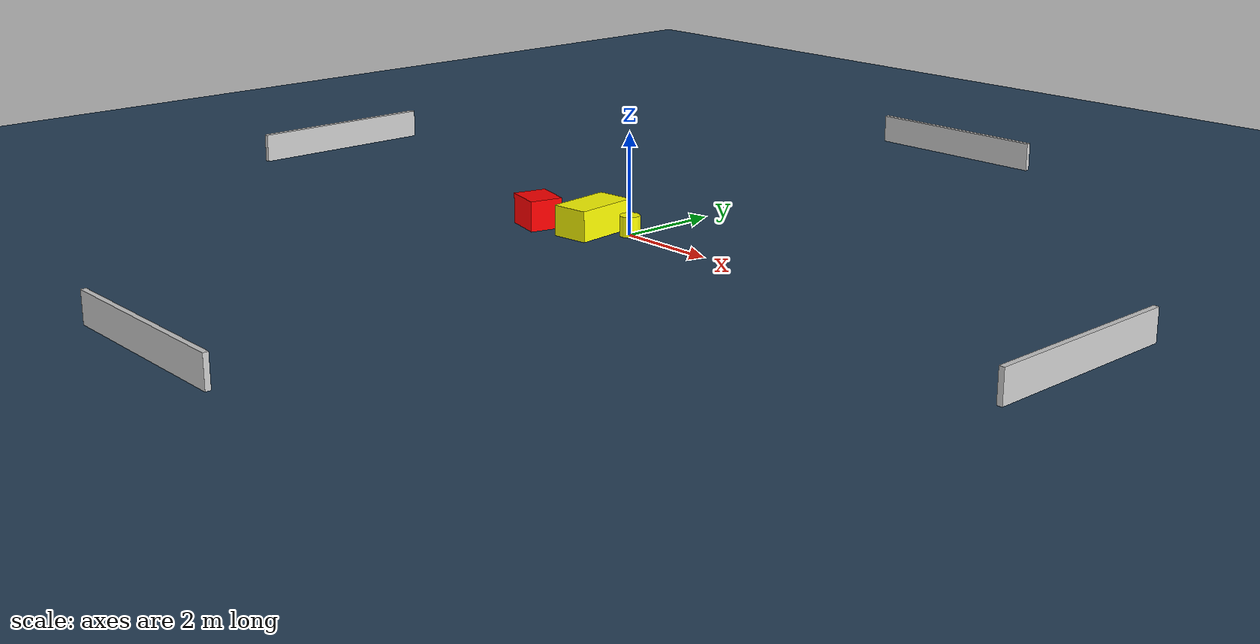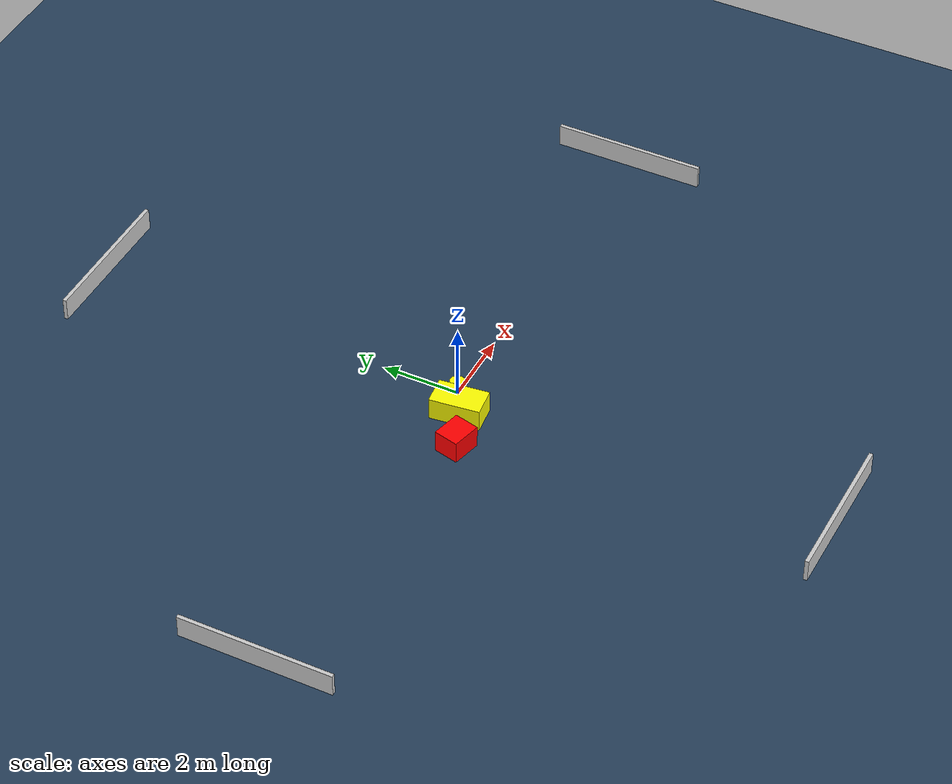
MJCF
<?xml version="1.0" ?>
<mujoco model="generated_environment">
  <option timestep="0.01" integrator="RK4" cone="elliptic"/>
  <default>
    <geom density="1"/>
  </default>
  <asset>
    <texture builtin="gradient" height="3072" name="skybox" rgb1="0.3 0.5 0.7" rgb2="0 0 0" type="skybox" width="512"/>
    <texture builtin="checker" height="300" name="groundplane" rgb1="0.2 0.3 0.4" rgb2="0.1 0.2 0.3" type="2d" width="300"/>
    <material name="groundplane" reflectance="0.2" texrepeat="5 5" texture="groundplane"/>
  </asset>
  <worldbody>
    <light dir="0 0 -1" directional="true" pos="0 0 1.5"/>
    <geom condim="3" friction="0.5 0.005 0.001" material="groundplane" name="floor" pos="0 0 0" size="0 0 0.05" type="plane"/>
    <body name="walls">
      <geom name="wall_1" condim="4" pos="-10.0 0.0 0.3" rgba="0.800000011920929 0.800000011920929 0.800000011920929 1.0" size="0.05 2.0 0.3" type="box"/>
      <geom name="wall_2" condim="4" pos="10.0 0.0 0.3" rgba="0.800000011920929 0.800000011920929 0.800000011920929 1.0" size="0.05 2.0 0.3" type="box"/>
      <geom name="wall_3" condim="4" pos="0.0 -10.0 0.3" rgba="0.800000011920929 0.800000011920929 0.800000011920929 1.0" size="2.0 0.05 0.3" type="box"/>
      <geom name="wall_4" condim="4" pos="0.0 10.0 0.3" rgba="0.800000011920929 0.800000011920929 0.800000011920929 1.0" size="2.0 0.05 0.3" type="box"/>
    </body>
    <body name="robot">
      <joint name="joint_x" type="slide" pos="0 0 0" axis="1 0 0"/>
      <joint name="joint_y" type="slide" pos="0 0 0" axis="0 1 0"/>
      <geom name="robot" type="cylinder" pos="0.0 0.0 0.2" size="0.2 0.2 0.0" mass="5.0" friction="1.0 0.005 0.0001" condim="4" rgba="1.0 1.0 0.0 1.0"/>
    </body>
    <body name="obstacle_1_movable">
      <geom name="obstacle_1_movable" condim="4" pos="-0.6456013727093265 -0.37497548975651984 0.3" euler="0 0 276.5833016108666" friction="0.0 0.005 0.001" rgba="1.0 1.0 0.0 1.0" size="0.6536921215774933 0.3776557756587553 0.3" type="box" mass="0.1"/>
      <joint type="free"/>
    </body>
    <body name="obstacle_2_static">
      <geom name="obstacle_2_static" condim="4" pos="-1.7288183355365856 -0.8466146357378138 0.3" euler="0 0 166.14195402182494" friction="0.0 0.005 0.001" rgba="1.0 0.0 0.0 1.0" size="0.3893831653084356 0.3299089503554796 0.3" type="box"/>
    </body>
  </worldbody>
  <actuator>
    <motor name="actuator_x" joint="joint_x" gear="1" ctrlrange="-1 1"/>
    <motor name="actuator_y" joint="joint_y" gear="1" ctrlrange="-1 1"/>
  </actuator>
</mujoco>
